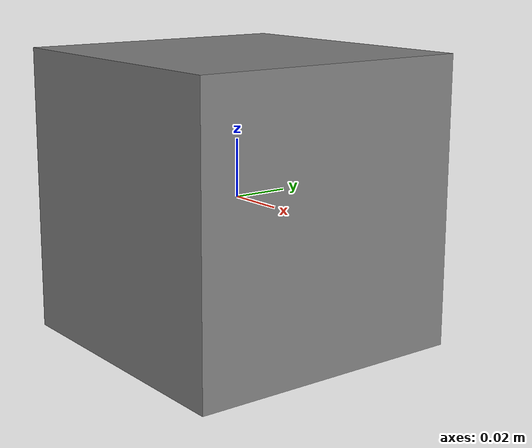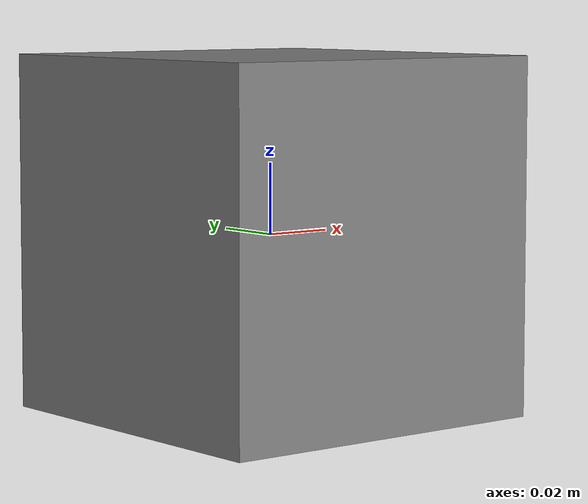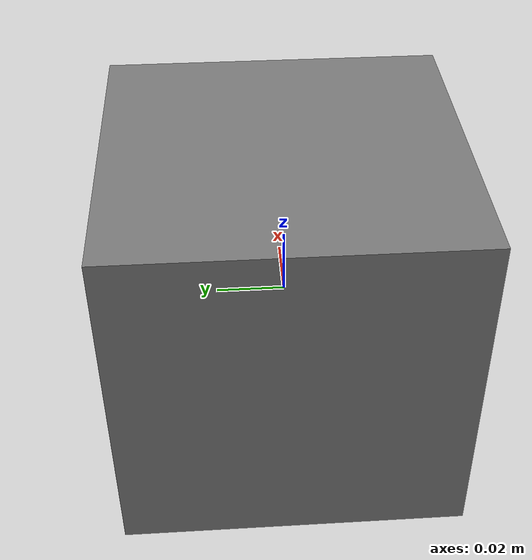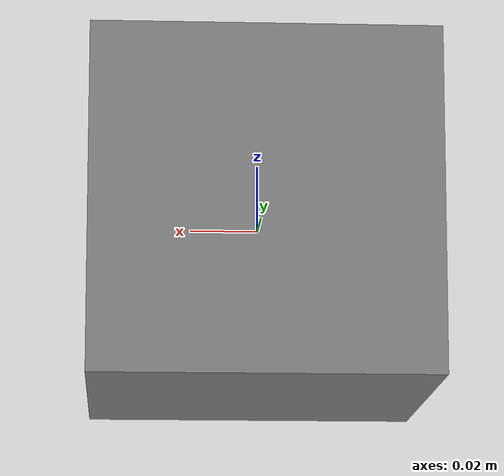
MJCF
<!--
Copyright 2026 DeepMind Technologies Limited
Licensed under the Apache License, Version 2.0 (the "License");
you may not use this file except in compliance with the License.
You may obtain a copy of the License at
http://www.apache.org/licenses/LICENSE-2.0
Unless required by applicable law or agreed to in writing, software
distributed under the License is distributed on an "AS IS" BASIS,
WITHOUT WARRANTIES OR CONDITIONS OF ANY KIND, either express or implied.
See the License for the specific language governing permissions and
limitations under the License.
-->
<mujoco>
  <!--
  A body on a vertical slider hangs from a fixed tendon spring. A fixed tendon acts through the
  joint, so the sensor on the body registers the force holding it: 1.
  -->
  <option gravity="0 0 -1"/>

  <worldbody>
    <body name="fixed">
      <body name="slider">
        <joint name="slide" type="slide" axis="0 0 1"/>
        <geom type="box" size="0.05 0.05 0.05" mass="1"/>
        <site name="sensor"/>
      </body>
    </body>
  </worldbody>

  <tendon>
    <fixed name="spring" stiffness="100" damping="20">
      <joint joint="slide" coef="1"/>
    </fixed>
  </tendon>

  <sensor>
    <force site="sensor" user="0 0 1"/>
  </sensor>
</mujoco>
